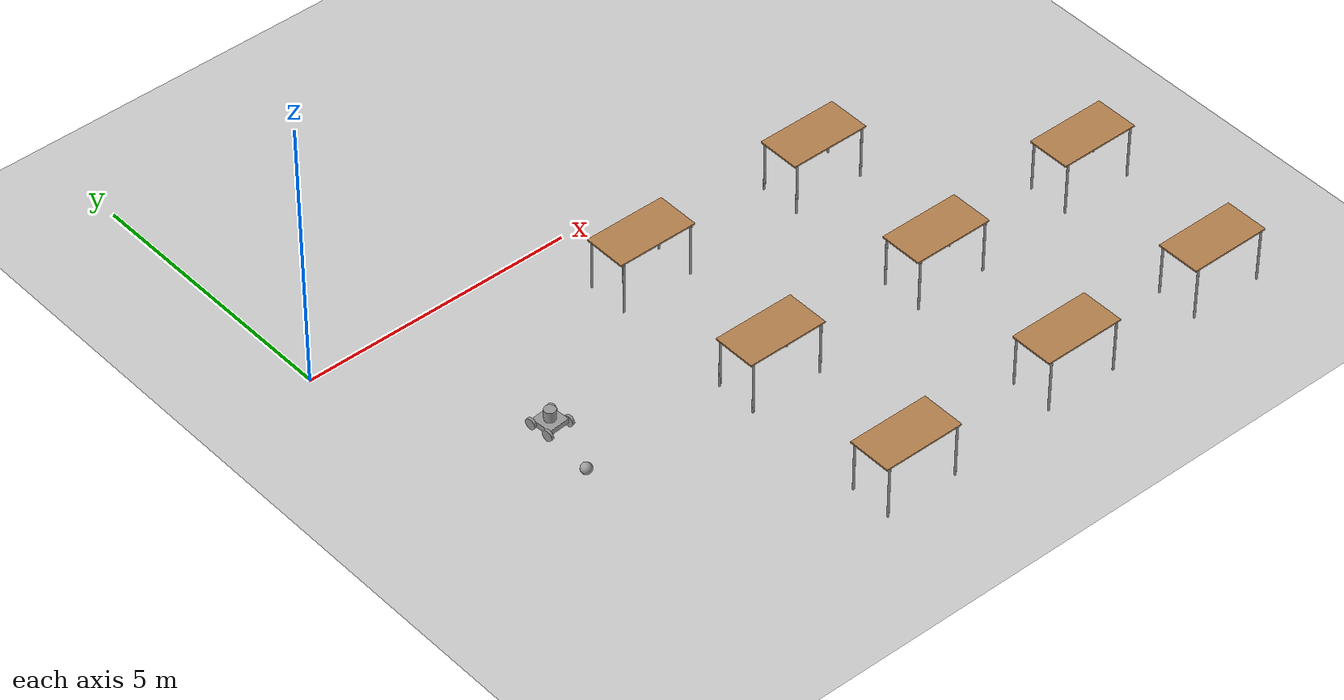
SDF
<sdf version="1.6">
 <world name="default">
  <model name="ground_plane">
   <static>1</static>
   <link name="link">
    <collision name="collision">
     <geometry><plane><normal>0 0 1</normal><size>100 100</size></plane></geometry>
     <surface>
      <contact><collide_bitmask>65535</collide_bitmask></contact>
      <friction><ode><mu>100</mu><mu2>50</mu2></ode></friction>
     </surface>
    </collision>
    <visual name="visual">
     <cast_shadows>0</cast_shadows>
     <geometry><plane><normal>0 0 1</normal><size>100 100</size></plane></geometry>
     <material>
      <script><uri>file://media/materials/scripts/gazebo.material</uri><name>Gazebo/Grey</name></script>
     </material>
    </visual>
   </link>
  </model>
  <model name="table">
   <static>1</static>
   <link name="link">
    <collision name="surface">
     <pose>0 0 1 0 -0 0</pose>
     <geometry><box><size>1.5 0.8 0.03</size></box></geometry>
     <surface><friction><ode><mu>0.6</mu><mu2>0.6</mu2></ode></friction></surface>
    </collision>
    <visual name="visual1">
     <pose>0 0 1 0 -0 0</pose>
     <geometry><box><size>1.5 0.8 0.03</size></box></geometry>
     <material>
      <script><uri>file://media/materials/scripts/gazebo.material</uri><name>Gazebo/Wood</name></script>
     </material>
    </visual>
    <collision name="front_left_leg">
     <pose>0.68 0.38 0.5 0 -0 0</pose>
     <geometry><cylinder><radius>0.02</radius><length>1</length></cylinder></geometry>
    </collision>
    <visual name="front_left_leg">
     <pose>0.68 0.38 0.5 0 -0 0</pose>
     <geometry><cylinder><radius>0.02</radius><length>1</length></cylinder></geometry>
     <material>
      <script><uri>file://media/materials/scripts/gazebo.material</uri><name>Gazebo/Grey</name></script>
     </material>
    </visual>
    <collision name="front_right_leg">
     <pose>0.68 -0.38 0.5 0 -0 0</pose>
     <geometry><cylinder><radius>0.02</radius><length>1</length></cylinder></geometry>
    </collision>
    <visual name="front_right_leg">
     <pose>0.68 -0.38 0.5 0 -0 0</pose>
     <geometry><cylinder><radius>0.02</radius><length>1</length></cylinder></geometry>
     <material>
      <script><uri>file://media/materials/scripts/gazebo.material</uri><name>Gazebo/Grey</name></script>
     </material>
    </visual>
    <collision name="back_right_leg">
     <pose>-0.68 -0.38 0.5 0 -0 0</pose>
     <geometry><cylinder><radius>0.02</radius><length>1</length></cylinder></geometry>
    </collision>
    <visual name="back_right_leg">
     <pose>-0.68 -0.38 0.5 0 -0 0</pose>
     <geometry><cylinder><radius>0.02</radius><length>1</length></cylinder></geometry>
     <material>
      <script><uri>file://media/materials/scripts/gazebo.material</uri><name>Gazebo/Grey</name></script>
     </material>
    </visual>
    <collision name="back_left_leg">
     <pose>-0.68 0.38 0.5 0 -0 0</pose>
     <geometry><cylinder><radius>0.02</radius><length>1</length></cylinder></geometry>
    </collision>
    <visual name="back_left_leg">
     <pose>-0.68 0.38 0.5 0 -0 0</pose>
     <geometry><cylinder><radius>0.02</radius><length>1</length></cylinder></geometry>
     <material>
      <script><uri>file://media/materials/scripts/gazebo.material</uri><name>Gazebo/Grey</name></script>
     </material>
    </visual>
   </link>
   <pose>11.8514 -7.39737 0 0 -0 0</pose>
  </model>
  <model name="table_clone">
   <static>1</static>
   <link name="link">
    <collision name="surface">
     <pose>0 0 1 0 -0 0</pose>
     <geometry><box><size>1.5 0.8 0.03</size></box></geometry>
     <surface><friction><ode><mu>0.6</mu><mu2>0.6</mu2></ode></friction></surface>
    </collision>
    <visual name="visual1">
     <pose>0 0 1 0 -0 0</pose>
     <geometry><box><size>1.5 0.8 0.03</size></box></geometry>
     <material>
      <script><uri>file://media/materials/scripts/gazebo.material</uri><name>Gazebo/Wood</name></script>
     </material>
    </visual>
    <collision name="front_left_leg">
     <pose>0.68 0.38 0.5 0 -0 0</pose>
     <geometry><cylinder><radius>0.02</radius><length>1</length></cylinder></geometry>
    </collision>
    <visual name="front_left_leg">
     <pose>0.68 0.38 0.5 0 -0 0</pose>
     <geometry><cylinder><radius>0.02</radius><length>1</length></cylinder></geometry>
     <material>
      <script><uri>file://media/materials/scripts/gazebo.material</uri><name>Gazebo/Grey</name></script>
     </material>
    </visual>
    <collision name="front_right_leg">
     <pose>0.68 -0.38 0.5 0 -0 0</pose>
     <geometry><cylinder><radius>0.02</radius><length>1</length></cylinder></geometry>
    </collision>
    <visual name="front_right_leg">
     <pose>0.68 -0.38 0.5 0 -0 0</pose>
     <geometry><cylinder><radius>0.02</radius><length>1</length></cylinder></geometry>
     <material>
      <script><uri>file://media/materials/scripts/gazebo.material</uri><name>Gazebo/Grey</name></script>
     </material>
    </visual>
    <collision name="back_right_leg">
     <pose>-0.68 -0.38 0.5 0 -0 0</pose>
     <geometry><cylinder><radius>0.02</radius><length>1</length></cylinder></geometry>
    </collision>
    <visual name="back_right_leg">
     <pose>-0.68 -0.38 0.5 0 -0 0</pose>
     <geometry><cylinder><radius>0.02</radius><length>1</length></cylinder></geometry>
     <material>
      <script><uri>file://media/materials/scripts/gazebo.material</uri><name>Gazebo/Grey</name></script>
     </material>
    </visual>
    <collision name="back_left_leg">
     <pose>-0.68 0.38 0.5 0 -0 0</pose>
     <geometry><cylinder><radius>0.02</radius><length>1</length></cylinder></geometry>
    </collision>
    <visual name="back_left_leg">
     <pose>-0.68 0.38 0.5 0 -0 0</pose>
     <geometry><cylinder><radius>0.02</radius><length>1</length></cylinder></geometry>
     <material>
      <script><uri>file://media/materials/scripts/gazebo.material</uri><name>Gazebo/Grey</name></script>
     </material>
    </visual>
   </link>
   <pose>12.0412 -4.33936 0 0 -0 0</pose>
  </model>
  <model name="table_clone_0">
   <static>1</static>
   <link name="link">
    <collision name="surface">
     <pose>0 0 1 0 -0 0</pose>
     <geometry><box><size>1.5 0.8 0.03</size></box></geometry>
     <surface><friction><ode><mu>0.6</mu><mu2>0.6</mu2></ode></friction></surface>
    </collision>
    <visual name="visual1">
     <pose>0 0 1 0 -0 0</pose>
     <geometry><box><size>1.5 0.8 0.03</size></box></geometry>
     <material>
      <script><uri>file://media/materials/scripts/gazebo.material</uri><name>Gazebo/Wood</name></script>
     </material>
    </visual>
    <collision name="front_left_leg">
     <pose>0.68 0.38 0.5 0 -0 0</pose>
     <geometry><cylinder><radius>0.02</radius><length>1</length></cylinder></geometry>
    </collision>
    <visual name="front_left_leg">
     <pose>0.68 0.38 0.5 0 -0 0</pose>
     <geometry><cylinder><radius>0.02</radius><length>1</length></cylinder></geometry>
     <material>
      <script><uri>file://media/materials/scripts/gazebo.material</uri><name>Gazebo/Grey</name></script>
     </material>
    </visual>
    <collision name="front_right_leg">
     <pose>0.68 -0.38 0.5 0 -0 0</pose>
     <geometry><cylinder><radius>0.02</radius><length>1</length></cylinder></geometry>
    </collision>
    <visual name="front_right_leg">
     <pose>0.68 -0.38 0.5 0 -0 0</pose>
     <geometry><cylinder><radius>0.02</radius><length>1</length></cylinder></geometry>
     <material>
      <script><uri>file://media/materials/scripts/gazebo.material</uri><name>Gazebo/Grey</name></script>
     </material>
    </visual>
    <collision name="back_right_leg">
     <pose>-0.68 -0.38 0.5 0 -0 0</pose>
     <geometry><cylinder><radius>0.02</radius><length>1</length></cylinder></geometry>
    </collision>
    <visual name="back_right_leg">
     <pose>-0.68 -0.38 0.5 0 -0 0</pose>
     <geometry><cylinder><radius>0.02</radius><length>1</length></cylinder></geometry>
     <material>
      <script><uri>file://media/materials/scripts/gazebo.material</uri><name>Gazebo/Grey</name></script>
     </material>
    </visual>
    <collision name="back_left_leg">
     <pose>-0.68 0.38 0.5 0 -0 0</pose>
     <geometry><cylinder><radius>0.02</radius><length>1</length></cylinder></geometry>
    </collision>
    <visual name="back_left_leg">
     <pose>-0.68 0.38 0.5 0 -0 0</pose>
     <geometry><cylinder><radius>0.02</radius><length>1</length></cylinder></geometry>
     <material>
      <script><uri>file://media/materials/scripts/gazebo.material</uri><name>Gazebo/Grey</name></script>
     </material>
    </visual>
   </link>
   <pose>8.72299 -7.42184 0 0 -0 0</pose>
  </model>
  <model name="table_clone_0_clone">
   <static>1</static>
   <link name="link">
    <collision name="surface">
     <pose>0 0 1 0 -0 0</pose>
     <geometry><box><size>1.5 0.8 0.03</size></box></geometry>
     <surface><friction><ode><mu>0.6</mu><mu2>0.6</mu2></ode></friction></surface>
    </collision>
    <visual name="visual1">
     <pose>0 0 1 0 -0 0</pose>
     <geometry><box><size>1.5 0.8 0.03</size></box></geometry>
     <material>
      <script><uri>file://media/materials/scripts/gazebo.material</uri><name>Gazebo/Wood</name></script>
     </material>
    </visual>
    <collision name="front_left_leg">
     <pose>0.68 0.38 0.5 0 -0 0</pose>
     <geometry><cylinder><radius>0.02</radius><length>1</length></cylinder></geometry>
    </collision>
    <visual name="front_left_leg">
     <pose>0.68 0.38 0.5 0 -0 0</pose>
     <geometry><cylinder><radius>0.02</radius><length>1</length></cylinder></geometry>
     <material>
      <script><uri>file://media/materials/scripts/gazebo.material</uri><name>Gazebo/Grey</name></script>
     </material>
    </visual>
    <collision name="front_right_leg">
     <pose>0.68 -0.38 0.5 0 -0 0</pose>
     <geometry><cylinder><radius>0.02</radius><length>1</length></cylinder></geometry>
    </collision>
    <visual name="front_right_leg">
     <pose>0.68 -0.38 0.5 0 -0 0</pose>
     <geometry><cylinder><radius>0.02</radius><length>1</length></cylinder></geometry>
     <material>
      <script><uri>file://media/materials/scripts/gazebo.material</uri><name>Gazebo/Grey</name></script>
     </material>
    </visual>
    <collision name="back_right_leg">
     <pose>-0.68 -0.38 0.5 0 -0 0</pose>
     <geometry><cylinder><radius>0.02</radius><length>1</length></cylinder></geometry>
    </collision>
    <visual name="back_right_leg">
     <pose>-0.68 -0.38 0.5 0 -0 0</pose>
     <geometry><cylinder><radius>0.02</radius><length>1</length></cylinder></geometry>
     <material>
      <script><uri>file://media/materials/scripts/gazebo.material</uri><name>Gazebo/Grey</name></script>
     </material>
    </visual>
    <collision name="back_left_leg">
     <pose>-0.68 0.38 0.5 0 -0 0</pose>
     <geometry><cylinder><radius>0.02</radius><length>1</length></cylinder></geometry>
    </collision>
    <visual name="back_left_leg">
     <pose>-0.68 0.38 0.5 0 -0 0</pose>
     <geometry><cylinder><radius>0.02</radius><length>1</length></cylinder></geometry>
     <material>
      <script><uri>file://media/materials/scripts/gazebo.material</uri><name>Gazebo/Grey</name></script>
     </material>
    </visual>
   </link>
   <pose>8.77167 -4.4817 0 0 -0 0</pose>
  </model>
  <model name="table_clone_0_clone_clone">
   <static>1</static>
   <link name="link">
    <collision name="surface">
     <pose>0 0 1 0 -0 0</pose>
     <geometry><box><size>1.5 0.8 0.03</size></box></geometry>
     <surface><friction><ode><mu>0.6</mu><mu2>0.6</mu2></ode></friction></surface>
    </collision>
    <visual name="visual1">
     <pose>0 0 1 0 -0 0</pose>
     <geometry><box><size>1.5 0.8 0.03</size></box></geometry>
     <material>
      <script><uri>file://media/materials/scripts/gazebo.material</uri><name>Gazebo/Wood</name></script>
     </material>
    </visual>
    <collision name="front_left_leg">
     <pose>0.68 0.38 0.5 0 -0 0</pose>
     <geometry><cylinder><radius>0.02</radius><length>1</length></cylinder></geometry>
    </collision>
    <visual name="front_left_leg">
     <pose>0.68 0.38 0.5 0 -0 0</pose>
     <geometry><cylinder><radius>0.02</radius><length>1</length></cylinder></geometry>
     <material>
      <script><uri>file://media/materials/scripts/gazebo.material</uri><name>Gazebo/Grey</name></script>
     </material>
    </visual>
    <collision name="front_right_leg">
     <pose>0.68 -0.38 0.5 0 -0 0</pose>
     <geometry><cylinder><radius>0.02</radius><length>1</length></cylinder></geometry>
    </collision>
    <visual name="front_right_leg">
     <pose>0.68 -0.38 0.5 0 -0 0</pose>
     <geometry><cylinder><radius>0.02</radius><length>1</length></cylinder></geometry>
     <material>
      <script><uri>file://media/materials/scripts/gazebo.material</uri><name>Gazebo/Grey</name></script>
     </material>
    </visual>
    <collision name="back_right_leg">
     <pose>-0.68 -0.38 0.5 0 -0 0</pose>
     <geometry><cylinder><radius>0.02</radius><length>1</length></cylinder></geometry>
    </collision>
    <visual name="back_right_leg">
     <pose>-0.68 -0.38 0.5 0 -0 0</pose>
     <geometry><cylinder><radius>0.02</radius><length>1</length></cylinder></geometry>
     <material>
      <script><uri>file://media/materials/scripts/gazebo.material</uri><name>Gazebo/Grey</name></script>
     </material>
    </visual>
    <collision name="back_left_leg">
     <pose>-0.68 0.38 0.5 0 -0 0</pose>
     <geometry><cylinder><radius>0.02</radius><length>1</length></cylinder></geometry>
    </collision>
    <visual name="back_left_leg">
     <pose>-0.68 0.38 0.5 0 -0 0</pose>
     <geometry><cylinder><radius>0.02</radius><length>1</length></cylinder></geometry>
     <material>
      <script><uri>file://media/materials/scripts/gazebo.material</uri><name>Gazebo/Grey</name></script>
     </material>
    </visual>
   </link>
   <pose>8.83789 -1.58849 0 0 -0 0</pose>
  </model>
  <model name="table_clone_0_clone_0">
   <static>1</static>
   <link name="link">
    <collision name="surface">
     <pose>0 0 1 0 -0 0</pose>
     <geometry><box><size>1.5 0.8 0.03</size></box></geometry>
     <surface><friction><ode><mu>0.6</mu><mu2>0.6</mu2></ode></friction></surface>
    </collision>
    <visual name="visual1">
     <pose>0 0 1 0 -0 0</pose>
     <geometry><box><size>1.5 0.8 0.03</size></box></geometry>
     <material>
      <script><uri>file://media/materials/scripts/gazebo.material</uri><name>Gazebo/Wood</name></script>
     </material>
    </visual>
    <collision name="front_left_leg">
     <pose>0.68 0.38 0.5 0 -0 0</pose>
     <geometry><cylinder><radius>0.02</radius><length>1</length></cylinder></geometry>
    </collision>
    <visual name="front_left_leg">
     <pose>0.68 0.38 0.5 0 -0 0</pose>
     <geometry><cylinder><radius>0.02</radius><length>1</length></cylinder></geometry>
     <material>
      <script><uri>file://media/materials/scripts/gazebo.material</uri><name>Gazebo/Grey</name></script>
     </material>
    </visual>
    <collision name="front_right_leg">
     <pose>0.68 -0.38 0.5 0 -0 0</pose>
     <geometry><cylinder><radius>0.02</radius><length>1</length></cylinder></geometry>
    </collision>
    <visual name="front_right_leg">
     <pose>0.68 -0.38 0.5 0 -0 0</pose>
     <geometry><cylinder><radius>0.02</radius><length>1</length></cylinder></geometry>
     <material>
      <script><uri>file://media/materials/scripts/gazebo.material</uri><name>Gazebo/Grey</name></script>
     </material>
    </visual>
    <collision name="back_right_leg">
     <pose>-0.68 -0.38 0.5 0 -0 0</pose>
     <geometry><cylinder><radius>0.02</radius><length>1</length></cylinder></geometry>
    </collision>
    <visual name="back_right_leg">
     <pose>-0.68 -0.38 0.5 0 -0 0</pose>
     <geometry><cylinder><radius>0.02</radius><length>1</length></cylinder></geometry>
     <material>
      <script><uri>file://media/materials/scripts/gazebo.material</uri><name>Gazebo/Grey</name></script>
     </material>
    </visual>
    <collision name="back_left_leg">
     <pose>-0.68 0.38 0.5 0 -0 0</pose>
     <geometry><cylinder><radius>0.02</radius><length>1</length></cylinder></geometry>
    </collision>
    <visual name="back_left_leg">
     <pose>-0.68 0.38 0.5 0 -0 0</pose>
     <geometry><cylinder><radius>0.02</radius><length>1</length></cylinder></geometry>
     <material>
      <script><uri>file://media/materials/scripts/gazebo.material</uri><name>Gazebo/Grey</name></script>
     </material>
    </visual>
   </link>
   <pose>5.33935 -7.51842 0 0 -0 0</pose>
  </model>
  <model name="table_clone_0_clone_0_clone">
   <static>1</static>
   <link name="link">
    <collision name="surface">
     <pose>0 0 1 0 -0 0</pose>
     <geometry><box><size>1.5 0.8 0.03</size></box></geometry>
     <surface><friction><ode><mu>0.6</mu><mu2>0.6</mu2></ode></friction></surface>
    </collision>
    <visual name="visual1">
     <pose>0 0 1 0 -0 0</pose>
     <geometry><box><size>1.5 0.8 0.03</size></box></geometry>
     <material>
      <script><uri>file://media/materials/scripts/gazebo.material</uri><name>Gazebo/Wood</name></script>
     </material>
    </visual>
    <collision name="front_left_leg">
     <pose>0.68 0.38 0.5 0 -0 0</pose>
     <geometry><cylinder><radius>0.02</radius><length>1</length></cylinder></geometry>
    </collision>
    <visual name="front_left_leg">
     <pose>0.68 0.38 0.5 0 -0 0</pose>
     <geometry><cylinder><radius>0.02</radius><length>1</length></cylinder></geometry>
     <material>
      <script><uri>file://media/materials/scripts/gazebo.material</uri><name>Gazebo/Grey</name></script>
     </material>
    </visual>
    <collision name="front_right_leg">
     <pose>0.68 -0.38 0.5 0 -0 0</pose>
     <geometry><cylinder><radius>0.02</radius><length>1</length></cylinder></geometry>
    </collision>
    <visual name="front_right_leg">
     <pose>0.68 -0.38 0.5 0 -0 0</pose>
     <geometry><cylinder><radius>0.02</radius><length>1</length></cylinder></geometry>
     <material>
      <script><uri>file://media/materials/scripts/gazebo.material</uri><name>Gazebo/Grey</name></script>
     </material>
    </visual>
    <collision name="back_right_leg">
     <pose>-0.68 -0.38 0.5 0 -0 0</pose>
     <geometry><cylinder><radius>0.02</radius><length>1</length></cylinder></geometry>
    </collision>
    <visual name="back_right_leg">
     <pose>-0.68 -0.38 0.5 0 -0 0</pose>
     <geometry><cylinder><radius>0.02</radius><length>1</length></cylinder></geometry>
     <material>
      <script><uri>file://media/materials/scripts/gazebo.material</uri><name>Gazebo/Grey</name></script>
     </material>
    </visual>
    <collision name="back_left_leg">
     <pose>-0.68 0.38 0.5 0 -0 0</pose>
     <geometry><cylinder><radius>0.02</radius><length>1</length></cylinder></geometry>
    </collision>
    <visual name="back_left_leg">
     <pose>-0.68 0.38 0.5 0 -0 0</pose>
     <geometry><cylinder><radius>0.02</radius><length>1</length></cylinder></geometry>
     <material>
      <script><uri>file://media/materials/scripts/gazebo.material</uri><name>Gazebo/Grey</name></script>
     </material>
    </visual>
   </link>
   <pose>5.31299 -4.53845 0 0 -0 0</pose>
  </model>
  <model name="table_clone_0_clone_0_clone_clone">
   <static>1</static>
   <link name="link">
    <collision name="surface">
     <pose>0 0 1 0 -0 0</pose>
     <geometry><box><size>1.5 0.8 0.03</size></box></geometry>
     <surface><friction><ode><mu>0.6</mu><mu2>0.6</mu2></ode></friction></surface>
    </collision>
    <visual name="visual1">
     <pose>0 0 1 0 -0 0</pose>
     <geometry><box><size>1.5 0.8 0.03</size></box></geometry>
     <material>
      <script><uri>file://media/materials/scripts/gazebo.material</uri><name>Gazebo/Wood</name></script>
     </material>
    </visual>
    <collision name="front_left_leg">
     <pose>0.68 0.38 0.5 0 -0 0</pose>
     <geometry><cylinder><radius>0.02</radius><length>1</length></cylinder></geometry>
    </collision>
    <visual name="front_left_leg">
     <pose>0.68 0.38 0.5 0 -0 0</pose>
     <geometry><cylinder><radius>0.02</radius><length>1</length></cylinder></geometry>
     <material>
      <script><uri>file://media/materials/scripts/gazebo.material</uri><name>Gazebo/Grey</name></script>
     </material>
    </visual>
    <collision name="front_right_leg">
     <pose>0.68 -0.38 0.5 0 -0 0</pose>
     <geometry><cylinder><radius>0.02</radius><length>1</length></cylinder></geometry>
    </collision>
    <visual name="front_right_leg">
     <pose>0.68 -0.38 0.5 0 -0 0</pose>
     <geometry><cylinder><radius>0.02</radius><length>1</length></cylinder></geometry>
     <material>
      <script><uri>file://media/materials/scripts/gazebo.material</uri><name>Gazebo/Grey</name></script>
     </material>
    </visual>
    <collision name="back_right_leg">
     <pose>-0.68 -0.38 0.5 0 -0 0</pose>
     <geometry><cylinder><radius>0.02</radius><length>1</length></cylinder></geometry>
    </collision>
    <visual name="back_right_leg">
     <pose>-0.68 -0.38 0.5 0 -0 0</pose>
     <geometry><cylinder><radius>0.02</radius><length>1</length></cylinder></geometry>
     <material>
      <script><uri>file://media/materials/scripts/gazebo.material</uri><name>Gazebo/Grey</name></script>
     </material>
    </visual>
    <collision name="back_left_leg">
     <pose>-0.68 0.38 0.5 0 -0 0</pose>
     <geometry><cylinder><radius>0.02</radius><length>1</length></cylinder></geometry>
    </collision>
    <visual name="back_left_leg">
     <pose>-0.68 0.38 0.5 0 -0 0</pose>
     <geometry><cylinder><radius>0.02</radius><length>1</length></cylinder></geometry>
     <material>
      <script><uri>file://media/materials/scripts/gazebo.material</uri><name>Gazebo/Grey</name></script>
     </material>
    </visual>
   </link>
   <pose>5.29207 -1.56373 0 0 -0 0</pose>
  </model>
  <model name="fourWheelRobby_0">
   <link name="link_1">
    <inertial>
     <mass>1</mass>
     <inertia>
      <ixx>0.166667</ixx>
      <ixy>0</ixy>
      <ixz>0</ixz>
      <iyy>0.166667</iyy>
      <iyz>0</iyz>
      <izz>0.166667</izz>
     </inertia>
    </inertial>
    <pose>-0.296148 0.102054 0.11 0 -0 0</pose>
    <visual name="visual">
     <geometry><box><size>0.4 0.4 0.1</size></box></geometry>
     <material>
      <lighting>1</lighting>
      <script><uri>file://media/materials/scripts/gazebo.material</uri><name>Gazebo/Grey</name></script>
      <shader type="pixel"><normal_map>__default__</normal_map></shader>
      <ambient>0.3 0.3 0.3 1</ambient>
      <diffuse>0.7 0.7 0.7 1</diffuse>
      <specular>0.01 0.01 0.01 1</specular>
      <emissive>0 0 0 1</emissive>
     </material>
    </visual>
    <collision name="collision">
     <geometry><box><size>0.4 0.4 0.1</size></box></geometry>
     <surface>
      <friction>
       <ode><mu>1</mu><mu2>1</mu2><fdir1>0 0 0</fdir1><slip1>0</slip1><slip2>0</slip2></ode>
       <torsional>
        <coefficient>1</coefficient>
        <patch_radius>0</patch_radius>
        <surface_radius>0</surface_radius>
        <use_patch_radius>1</use_patch_radius>
        <ode><slip>0</slip></ode>
       </torsional>
      </friction>
      <bounce><restitution_coefficient>0</restitution_coefficient><threshold>1e+06</threshold></bounce>
      <contact>
       <collide_without_contact>0</collide_without_contact>
       <collide_without_contact_bitmask>1</collide_without_contact_bitmask>
       <collide_bitmask>1</collide_bitmask>
       <ode>
        <soft_cfm>0</soft_cfm>
        <soft_erp>0.2</soft_erp>
        <kp>1e+13</kp>
        <kd>1</kd>
        <max_vel>0.01</max_vel>
        <min_depth>0</min_depth>
       </ode>
       <bullet>
        <split_impulse>1</split_impulse>
        <split_impulse_penetration_threshold>-0.01</split_impulse_penetration_threshold>
        <soft_cfm>0</soft_cfm>
        <soft_erp>0.2</soft_erp>
        <kp>1e+13</kp>
        <kd>1</kd>
       </bullet>
      </contact>
     </surface>
    </collision>
   </link>
   <link name="link_2">
    <inertial>
     <mass>1</mass>
     <inertia><ixx>0.145833</ixx><ixy>0</ixy><ixz>0</ixz><iyy>0.145833</iyy><iyz>0</iyz><izz>0.125</izz></inertia>
    </inertial>
    <pose>-0.521147 0.282053 0.098 0 1.5707 0</pose>
    <visual name="visual">
     <geometry><cylinder><radius>0.1</radius><length>0.05</length></cylinder></geometry>
     <material>
      <lighting>1</lighting>
      <script><uri>file://media/materials/scripts/gazebo.material</uri><name>Gazebo/Grey</name></script>
      <shader type="pixel"><normal_map>__default__</normal_map></shader>
      <ambient>0.3 0.3 0.3 1</ambient>
      <diffuse>0.7 0.7 0.7 1</diffuse>
      <specular>0.01 0.01 0.01 1</specular>
      <emissive>0 0 0 1</emissive>
     </material>
    </visual>
    <collision name="collision">
     <geometry><cylinder><radius>0.1</radius><length>0.05</length></cylinder></geometry>
     <surface>
      <friction>
       <ode><mu>1</mu><mu2>1</mu2><fdir1>0 0 0</fdir1><slip1>0</slip1><slip2>0</slip2></ode>
       <torsional>
        <coefficient>1</coefficient>
        <patch_radius>0</patch_radius>
        <surface_radius>0</surface_radius>
        <use_patch_radius>1</use_patch_radius>
        <ode><slip>0</slip></ode>
       </torsional>
      </friction>
      <bounce><restitution_coefficient>0</restitution_coefficient><threshold>1e+06</threshold></bounce>
      <contact>
       <collide_without_contact>0</collide_without_contact>
       <collide_without_contact_bitmask>1</collide_without_contact_bitmask>
       <collide_bitmask>1</collide_bitmask>
       <ode>
        <soft_cfm>0</soft_cfm>
        <soft_erp>0.2</soft_erp>
        <kp>1e+13</kp>
        <kd>1</kd>
        <max_vel>0.01</max_vel>
        <min_depth>0</min_depth>
       </ode>
       <bullet>
        <split_impulse>1</split_impulse>
        <split_impulse_penetration_threshold>-0.01</split_impulse_penetration_threshold>
        <soft_cfm>0</soft_cfm>
        <soft_erp>0.2</soft_erp>
        <kp>1e+13</kp>
        <kd>1</kd>
       </bullet>
      </contact>
     </surface>
    </collision>
   </link>
   <link name="link_2_clone">
    <inertial>
     <mass>1</mass>
     <inertia><ixx>0.145833</ixx><ixy>0</ixy><ixz>0</ixz><iyy>0.145833</iyy><iyz>0</iyz><izz>0.125</izz></inertia>
    </inertial>
    <pose>-0.521157 -0.077947 0.088 0 1.5707 0</pose>
    <visual name="visual">
     <geometry><cylinder><radius>0.1</radius><length>0.05</length></cylinder></geometry>
     <material>
      <lighting>1</lighting>
      <script><uri>file://media/materials/scripts/gazebo.material</uri><name>Gazebo/Grey</name></script>
      <shader type="pixel"><normal_map>__default__</normal_map></shader>
      <ambient>0.3 0.3 0.3 1</ambient>
      <diffuse>0.7 0.7 0.7 1</diffuse>
      <specular>0.01 0.01 0.01 1</specular>
      <emissive>0 0 0 1</emissive>
     </material>
    </visual>
    <collision name="collision">
     <geometry><cylinder><radius>0.1</radius><length>0.05</length></cylinder></geometry>
     <surface>
      <friction>
       <ode><mu>1</mu><mu2>1</mu2><fdir1>0 0 0</fdir1><slip1>0</slip1><slip2>0</slip2></ode>
       <torsional>
        <coefficient>1</coefficient>
        <patch_radius>0</patch_radius>
        <surface_radius>0</surface_radius>
        <use_patch_radius>1</use_patch_radius>
        <ode><slip>0</slip></ode>
       </torsional>
      </friction>
      <bounce><restitution_coefficient>0</restitution_coefficient><threshold>1e+06</threshold></bounce>
      <contact>
       <collide_without_contact>0</collide_without_contact>
       <collide_without_contact_bitmask>1</collide_without_contact_bitmask>
       <collide_bitmask>1</collide_bitmask>
       <ode>
        <soft_cfm>0</soft_cfm>
        <soft_erp>0.2</soft_erp>
        <kp>1e+13</kp>
        <kd>1</kd>
        <max_vel>0.01</max_vel>
        <min_depth>0</min_depth>
       </ode>
       <bullet>
        <split_impulse>1</split_impulse>
        <split_impulse_penetration_threshold>-0.01</split_impulse_penetration_threshold>
        <soft_cfm>0</soft_cfm>
        <soft_erp>0.2</soft_erp>
        <kp>1e+13</kp>
        <kd>1</kd>
       </bullet>
      </contact>
     </surface>
    </collision>
   </link>
   <link name="link_2_clone_clone">
    <inertial>
     <mass>1</mass>
     <inertia><ixx>0.145833</ixx><ixy>0</ixy><ixz>0</ixz><iyy>0.145833</iyy><iyz>0</iyz><izz>0.125</izz></inertia>
    </inertial>
    <pose>-0.071137 -0.077947 0.088 0 1.5707 0</pose>
    <visual name="visual">
     <geometry><cylinder><radius>0.1</radius><length>0.05</length></cylinder></geometry>
     <material>
      <lighting>1</lighting>
      <script><uri>file://media/materials/scripts/gazebo.material</uri><name>Gazebo/Grey</name></script>
      <shader type="pixel"><normal_map>__default__</normal_map></shader>
      <ambient>0.3 0.3 0.3 1</ambient>
      <diffuse>0.7 0.7 0.7 1</diffuse>
      <specular>0.01 0.01 0.01 1</specular>
      <emissive>0 0 0 1</emissive>
     </material>
    </visual>
    <collision name="collision">
     <geometry><cylinder><radius>0.1</radius><length>0.05</length></cylinder></geometry>
     <surface>
      <friction>
       <ode><mu>1</mu><mu2>1</mu2><fdir1>0 0 0</fdir1><slip1>0</slip1><slip2>0</slip2></ode>
       <torsional>
        <coefficient>1</coefficient>
        <patch_radius>0</patch_radius>
        <surface_radius>0</surface_radius>
        <use_patch_radius>1</use_patch_radius>
        <ode><slip>0</slip></ode>
       </torsional>
      </friction>
      <bounce><restitution_coefficient>0</restitution_coefficient><threshold>1e+06</threshold></bounce>
      <contact>
       <collide_without_contact>0</collide_without_contact>
       <collide_without_contact_bitmask>1</collide_without_contact_bitmask>
       <collide_bitmask>1</collide_bitmask>
       <ode>
        <soft_cfm>0</soft_cfm>
        <soft_erp>0.2</soft_erp>
        <kp>1e+13</kp>
        <kd>1</kd>
        <max_vel>0.01</max_vel>
        <min_depth>0</min_depth>
       </ode>
       <bullet>
        <split_impulse>1</split_impulse>
        <split_impulse_penetration_threshold>-0.01</split_impulse_penetration_threshold>
        <soft_cfm>0</soft_cfm>
        <soft_erp>0.2</soft_erp>
        <kp>1e+13</kp>
        <kd>1</kd>
       </bullet>
      </contact>
     </surface>
    </collision>
   </link>
   <link name="link_2_clone_clone_clone">
    <inertial>
     <mass>1</mass>
     <inertia><ixx>0.145833</ixx><ixy>0</ixy><ixz>0</ixz><iyy>0.145833</iyy><iyz>0</iyz><izz>0.125</izz></inertia>
    </inertial>
    <pose>-0.071137 0.282053 0.088 0 1.5707 0</pose>
    <visual name="visual">
     <geometry><cylinder><radius>0.1</radius><length>0.05</length></cylinder></geometry>
     <material>
      <lighting>1</lighting>
      <script><uri>file://media/materials/scripts/gazebo.material</uri><name>Gazebo/Grey</name></script>
      <shader type="pixel"><normal_map>__default__</normal_map></shader>
      <ambient>0.3 0.3 0.3 1</ambient>
      <diffuse>0.7 0.7 0.7 1</diffuse>
      <specular>0.01 0.01 0.01 1</specular>
      <emissive>0 0 0 1</emissive>
     </material>
    </visual>
    <collision name="collision">
     <geometry><cylinder><radius>0.1</radius><length>0.05</length></cylinder></geometry>
     <surface>
      <friction>
       <ode><mu>1</mu><mu2>1</mu2><fdir1>0 0 0</fdir1><slip1>0</slip1><slip2>0</slip2></ode>
       <torsional>
        <coefficient>1</coefficient>
        <patch_radius>0</patch_radius>
        <surface_radius>0</surface_radius>
        <use_patch_radius>1</use_patch_radius>
        <ode><slip>0</slip></ode>
       </torsional>
      </friction>
      <bounce><restitution_coefficient>0</restitution_coefficient><threshold>1e+06</threshold></bounce>
      <contact>
       <collide_without_contact>0</collide_without_contact>
       <collide_without_contact_bitmask>1</collide_without_contact_bitmask>
       <collide_bitmask>1</collide_bitmask>
       <ode>
        <soft_cfm>0</soft_cfm>
        <soft_erp>0.2</soft_erp>
        <kp>1e+13</kp>
        <kd>1</kd>
        <max_vel>0.01</max_vel>
        <min_depth>0</min_depth>
       </ode>
       <bullet>
        <split_impulse>1</split_impulse>
        <split_impulse_penetration_threshold>-0.01</split_impulse_penetration_threshold>
        <soft_cfm>0</soft_cfm>
        <soft_erp>0.2</soft_erp>
        <kp>1e+13</kp>
        <kd>1</kd>
       </bullet>
      </contact>
     </surface>
    </collision>
   </link>
   <link name="link_3">
    <inertial>
     <mass>1</mass>
     <inertia><ixx>0.145833</ixx><ixy>0</ixy><ixz>0</ixz><iyy>0.145833</iyy><iyz>0</iyz><izz>0.125</izz></inertia>
    </inertial>
    <pose>-0.296148 0.102054 0.26 0 -0 0</pose>
    <visual name="visual">
     <geometry><cylinder><radius>0.1</radius><length>0.2</length></cylinder></geometry>
     <material>
      <lighting>1</lighting>
      <script><uri>file://media/materials/scripts/gazebo.material</uri><name>Gazebo/Grey</name></script>
      <shader type="pixel"><normal_map>__default__</normal_map></shader>
      <ambient>0.3 0.3 0.3 1</ambient>
      <diffuse>0.7 0.7 0.7 1</diffuse>
      <specular>0.01 0.01 0.01 1</specular>
      <emissive>0 0 0 1</emissive>
     </material>
    </visual>
    <collision name="collision">
     <geometry><cylinder><radius>0.1</radius><length>0.2</length></cylinder></geometry>
     <surface>
      <friction>
       <ode><mu>1</mu><mu2>1</mu2><fdir1>0 0 0</fdir1><slip1>0</slip1><slip2>0</slip2></ode>
       <torsional>
        <coefficient>1</coefficient>
        <patch_radius>0</patch_radius>
        <surface_radius>0</surface_radius>
        <use_patch_radius>1</use_patch_radius>
        <ode><slip>0</slip></ode>
       </torsional>
      </friction>
      <bounce><restitution_coefficient>0</restitution_coefficient><threshold>1e+06</threshold></bounce>
      <contact>
       <collide_without_contact>0</collide_without_contact>
       <collide_without_contact_bitmask>1</collide_without_contact_bitmask>
       <collide_bitmask>1</collide_bitmask>
       <ode>
        <soft_cfm>0</soft_cfm>
        <soft_erp>0.2</soft_erp>
        <kp>1e+13</kp>
        <kd>1</kd>
        <max_vel>0.01</max_vel>
        <min_depth>0</min_depth>
       </ode>
       <bullet>
        <split_impulse>1</split_impulse>
        <split_impulse_penetration_threshold>-0.01</split_impulse_penetration_threshold>
        <soft_cfm>0</soft_cfm>
        <soft_erp>0.2</soft_erp>
        <kp>1e+13</kp>
        <kd>1</kd>
       </bullet>
      </contact>
     </surface>
    </collision>
   </link>
   <joint name="link_1_JOINT_0" type="revolute">
    <parent>link_1</parent>
    <child>link_2_clone</child>
    <axis>
     <xyz>0 0 1</xyz>
     <limit>
      <lower>-1.79769e+308</lower>
      <upper>1.79769e+308</upper>
      <effort>-1</effort>
      <velocity>-1</velocity>
     </limit>
     <dynamics>
      <spring_reference>0</spring_reference>
      <spring_stiffness>0</spring_stiffness>
      <damping>0</damping>
     </dynamics>
    </axis>
    <physics>
     <ode><limit><cfm>0</cfm><erp>0.2</erp></limit><suspension><cfm>0</cfm><erp>0.2</erp></suspension></ode>
    </physics>
   </joint>
   <joint name="link_1_JOINT_1" type="revolute">
    <parent>link_1</parent>
    <child>link_2</child>
    <axis>
     <xyz>0 0 1</xyz>
     <limit>
      <lower>-1.79769e+308</lower>
      <upper>1.79769e+308</upper>
      <effort>-1</effort>
      <velocity>-1</velocity>
     </limit>
     <dynamics>
      <spring_reference>0</spring_reference>
      <spring_stiffness>0</spring_stiffness>
      <damping>0</damping>
     </dynamics>
    </axis>
    <physics>
     <ode><limit><cfm>0</cfm><erp>0.2</erp></limit><suspension><cfm>0</cfm><erp>0.2</erp></suspension></ode>
    </physics>
   </joint>
   <joint name="link_1_JOINT_2" type="revolute">
    <parent>link_1</parent>
    <child>link_2_clone_clone_clone</child>
    <axis>
     <xyz>0 0 1</xyz>
     <limit>
      <lower>-1.79769e+308</lower>
      <upper>1.79769e+308</upper>
      <effort>-1</effort>
      <velocity>-1</velocity>
     </limit>
     <dynamics>
      <spring_reference>0</spring_reference>
      <spring_stiffness>0</spring_stiffness>
      <damping>0</damping>
     </dynamics>
    </axis>
    <physics>
     <ode><limit><cfm>0</cfm><erp>0.2</erp></limit><suspension><cfm>0</cfm><erp>0.2</erp></suspension></ode>
    </physics>
   </joint>
   <joint name="link_1_JOINT_3" type="revolute">
    <parent>link_1</parent>
    <child>link_2_clone_clone</child>
    <axis>
     <xyz>1 0 0</xyz>
     <limit>
      <lower>-1.79769e+308</lower>
      <upper>1.79769e+308</upper>
      <effort>-1</effort>
      <velocity>-1</velocity>
     </limit>
     <dynamics>
      <spring_reference>0</spring_reference>
      <spring_stiffness>0</spring_stiffness>
      <damping>0</damping>
     </dynamics>
    </axis>
    <physics>
     <ode><limit><cfm>0</cfm><erp>0.2</erp></limit><suspension><cfm>0</cfm><erp>0.2</erp></suspension></ode>
    </physics>
   </joint>
   <joint name="link_1_JOINT_4" type="fixed">
    <parent>link_1</parent>
    <child>link_3</child>
    <physics>
     <ode><limit><cfm>0</cfm><erp>0.2</erp></limit><suspension><cfm>0</cfm><erp>0.2</erp></suspension></ode>
    </physics>
   </joint>
   <static>0</static>
   <pose>2.40977 -3.23642 0.012003 -1e-06 -7e-06 0.095254</pose>
  </model>
  <model name="myworld_wBall">
   <link name="link_0">
    <inertial>
     <mass>1</mass>
     <inertia><ixx>0.1</ixx><ixy>0</ixy><ixz>0</ixz><iyy>0.1</iyy><iyz>0</iyz><izz>0.1</izz></inertia>
    </inertial>
    <pose>-4e-06 2e-06 0 0 -0 0</pose>
    <visual name="visual">
     <geometry><sphere><radius>0.1</radius></sphere></geometry>
     <material>
      <lighting>1</lighting>
      <script><uri>file://media/materials/scripts/gazebo.material</uri><name>Gazebo/Grey</name></script>
      <shader type="pixel"><normal_map>__default__</normal_map></shader>
      <ambient>1 1 1 1</ambient>
      <diffuse>1 1 1 1</diffuse>
      <specular>1 1 1 1</specular>
      <emissive>1 1 1 1</emissive>
     </material>
    </visual>
    <collision name="collision">
     <geometry><sphere><radius>0.1</radius></sphere></geometry>
     <surface>
      <friction>
       <ode><mu>1</mu><mu2>1</mu2><fdir1>0 0 0</fdir1><slip1>0</slip1><slip2>0</slip2></ode>
       <torsional>
        <coefficient>1</coefficient>
        <patch_radius>0</patch_radius>
        <surface_radius>0</surface_radius>
        <use_patch_radius>1</use_patch_radius>
        <ode><slip>0</slip></ode>
       </torsional>
      </friction>
      <bounce><restitution_coefficient>0</restitution_coefficient><threshold>1e+06</threshold></bounce>
      <contact>
       <collide_without_contact>0</collide_without_contact>
       <collide_without_contact_bitmask>1</collide_without_contact_bitmask>
       <collide_bitmask>1</collide_bitmask>
       <ode>
        <soft_cfm>0</soft_cfm>
        <soft_erp>0.2</soft_erp>
        <kp>1e+13</kp>
        <kd>1</kd>
        <max_vel>0.01</max_vel>
        <min_depth>0</min_depth>
       </ode>
       <bullet>
        <split_impulse>1</split_impulse>
        <split_impulse_penetration_threshold>-0.01</split_impulse_penetration_threshold>
        <soft_cfm>0</soft_cfm>
        <soft_erp>0.2</soft_erp>
        <kp>1e+13</kp>
        <kd>1</kd>
       </bullet>
      </contact>
     </surface>
    </collision>
   </link>
   <static>0</static>
   <pose>1.61487 -4.5948 0.5 0 -0 0</pose>
  </model>
 </world>
</sdf>
